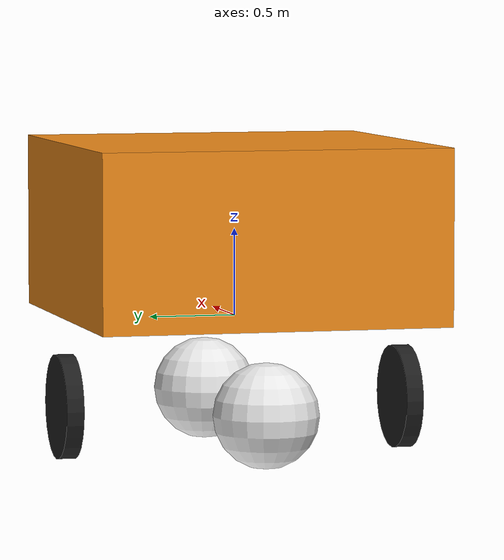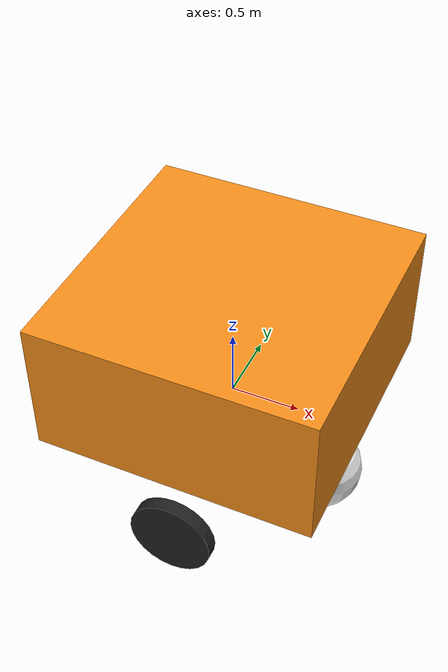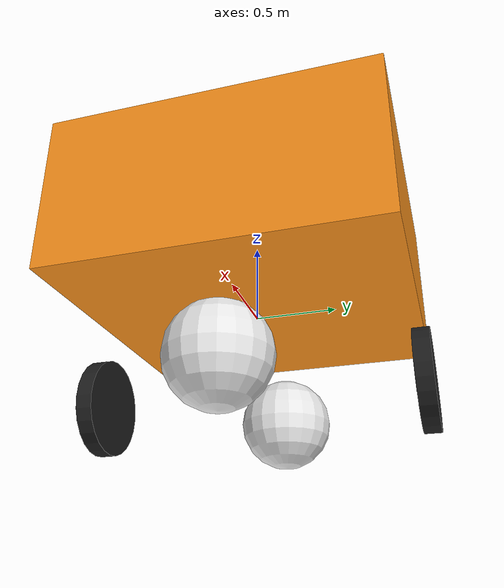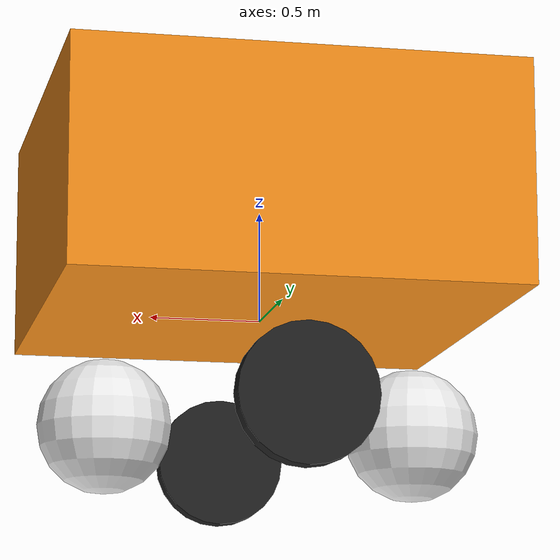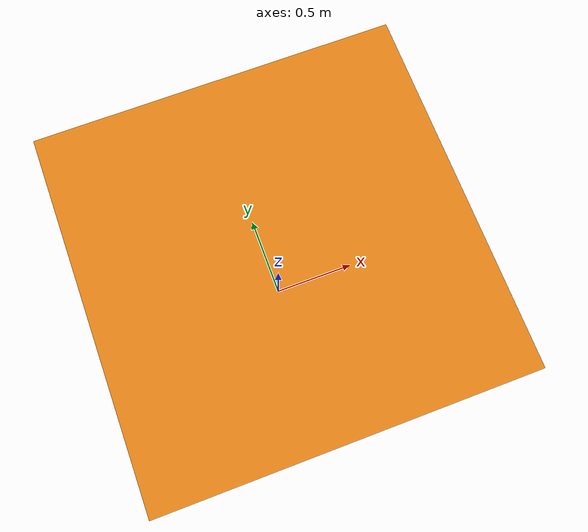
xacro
<?xml version="1.0"?>
<!-- Basic differential drive mobile base -->
<robot xmlns:xacro="http://www.ros.org/wiki/xacro" name="diffdrive_robot">
  <xacro:arg name="prefix" default="" />
  <xacro:arg name="use_gazebo" default="false" />

  <xacro:include filename="$(find ugv_ctrl)/description/urdf/diffbot_description.urdf.xacro" />

  <!-- Import Rviz colors -->
  <xacro:include filename="$(find ugv_ctrl)/description/urdf/diffbot.materials.xacro" />

  <!-- Import diffbot ros2_control description -->
  <xacro:include filename="$(find ugv_ctrl)/description/ros2_control/diffbot.ros2_control.xacro" />

  <xacro:diffbot prefix="$(arg prefix)" />

  <xacro:diffbot_ros2_control
    name="DiffBot" prefix="$(arg prefix)" use_gazebo="$(arg use_gazebo)" />

  <xacro:if value="$(arg use_gazebo)">
    <!-- Import Gazebo Classic definitions + plugin -->
    <xacro:include filename="$(find ugv_ctrl)/description/gazebo/diffbot.gazebo.xacro" />
    <xacro:diffbot_gazebo prefix="$(arg prefix)" />
  </xacro:if>

</robot>

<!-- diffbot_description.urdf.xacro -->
<robot xmlns:xacro="http://www.ros.org/wiki/xacro">

  <xacro:macro name="diffbot" params="prefix">

    <!-- Constants for robot dimensions -->
    <xacro:property name="PI" value="3.1415926535897931" />
    <xacro:property name="base_mass" value="0.3" /> <!-- arbitrary value for base mass -->
    <xacro:property name="base_width" value="2.0" />
    <xacro:property name="base_length" value="2.0" />
    <xacro:property name="base_height" value="1.0" />
    <xacro:property name="wheel_mass" value="0.3" /> <!-- arbitrary value for wheel mass -->
    <xacro:property name="wheel_len" value="0.1" />
    <xacro:property name="wheel_radius" value="0.3" />
    <xacro:property name="caster_wheel_mass" value="0.1" /> <!-- arbitrary value for caster wheel
    mass -->
    <xacro:property name="caster_wheel_radius" value="0.3" />
    <xacro:property name="z_offset" value="-${base_height/2}" /> <!-- Space btw top of beam and the
    each joint -->

    <!-- Base Link -->
    <link name="${prefix}base_link">
      <collision>
        <origin xyz="0 0 0" rpy="0 0 0" />
        <geometry>
          <box size="${base_width} ${base_length} ${base_height}" />
        </geometry>
      </collision>

      <visual>
        <origin xyz="0 0 ${base_height/2}" rpy="0 0 0" />
        <geometry>
          <box size="${base_width} ${base_length} ${base_height}" />
        </geometry>
        <material name="orange" />
      </visual>

      <inertial>
        <origin xyz="0 0 0" rpy="0 0 0" />
        <mass value="${base_mass}" />
        <inertia
          ixx="${base_mass / 12.0 * (base_length*base_length + base_height*base_height)}" ixy="0.0"
          ixz="0.0"
          iyy="${base_mass / 12.0 * (base_height*base_height + base_width*base_width)}" iyz="0.0"
          izz="${base_mass / 12.0 * (base_width*base_width + base_length*base_length)}" />
      </inertial>
    </link>

    <joint name="${prefix}left_wheel_joint" type="continuous">
      <parent link="${prefix}base_link" />
      <child link="${prefix}left_wheel" />
      <origin xyz="0 ${base_width/2} ${z_offset}" rpy="0 0 0" />
      <axis xyz="0 1 0" />
      <dynamics damping="0.2" />
      <limit effort="100" velocity="1.0" />
    </joint>

    <!-- left wheel Link -->
    <link name="${prefix}left_wheel">
      <collision>
        <origin xyz="0 0 0" rpy="${PI/2} 0 0" />
        <geometry>
          <cylinder length="${wheel_len}" radius="${wheel_radius}" />
        </geometry>
      </collision>

      <visual>
        <origin xyz="0 0 0" rpy="${PI/2} 0 0" />
        <geometry>
          <cylinder length="${wheel_len}" radius="${wheel_radius}" />
        </geometry>
        <material name="black" />
      </visual>

      <inertial>
        <origin xyz="0 0 0" rpy="${PI/2} 0 0" />
        <mass value="${wheel_mass}" />
        <inertia
          ixx="${wheel_mass / 12.0 * (3*wheel_radius*wheel_radius + wheel_len*wheel_len)}" ixy="0.0"
          ixz="0.0"
          iyy="${wheel_mass / 12.0 * (3*wheel_radius*wheel_radius + wheel_len*wheel_len)}" iyz="0.0"
          izz="${wheel_mass / 2.0 * wheel_radius*wheel_radius}" />
      </inertial>
    </link>

    <joint name="${prefix}right_wheel_joint" type="continuous">
      <parent link="${prefix}base_link" />
      <child link="${prefix}right_wheel" />
      <origin xyz="0 -${base_width/2} ${z_offset}" rpy="0 0 0" />
      <axis xyz="0 1 0" />
      <dynamics damping="0.2" />
      <limit effort="100" velocity="1.0" />
    </joint>

    <!-- right wheel Link -->
    <link name="${prefix}right_wheel">
      <collision>
        <origin xyz="0 0 0" rpy="${PI/2} 0 0" />
        <geometry>
          <cylinder length="${wheel_len}" radius="${wheel_radius}" />
        </geometry>
      </collision>

      <visual>
        <origin xyz="0 0 0" rpy="${PI/2} 0 0" />
        <geometry>
          <cylinder length="${wheel_len}" radius="${wheel_radius}" />
        </geometry>
        <material name="black" />
      </visual>

      <inertial>
        <origin xyz="0 0 0" rpy="${PI/2} 0 0" />
        <mass value="${wheel_mass}" />
        <inertia
          ixx="${wheel_mass / 12.0 * (3*wheel_radius*wheel_radius + wheel_len*wheel_len)}" ixy="0.0"
          ixz="0.0"
          iyy="${wheel_mass / 12.0 * (3*wheel_radius*wheel_radius + wheel_len*wheel_len)}" iyz="0.0"
          izz="${wheel_mass / 2.0 * wheel_radius*wheel_radius}" />
      </inertial>
    </link>

    <joint name="${prefix}caster_frontal_wheel_joint" type="fixed">
      <parent link="${prefix}base_link" />
      <child link="${prefix}caster_frontal_wheel" />
      <origin xyz="${base_width/2 - caster_wheel_radius} 0 ${z_offset}" rpy="0 0 0" />
    </joint>

    <!-- caster frontal wheel Link -->
    <link name="${prefix}caster_frontal_wheel">
      <collision>
        <origin xyz="0 0 0" rpy="0 0 0" />
        <geometry>
          <sphere radius="${caster_wheel_radius}" />
        </geometry>
      </collision>

      <visual>
        <origin xyz="0 0 0" rpy="0 0 0" />
        <geometry>
          <sphere radius="${caster_wheel_radius}" />
        </geometry>
        <material name="white" />
      </visual>

      <inertial>
        <origin xyz="0 0 0" rpy="0 0 0" />
        <mass value="${caster_wheel_mass}" />
        <inertia
          ixx="${caster_wheel_mass * 0.4 * (caster_wheel_radius * caster_wheel_radius)}" ixy="0.0"
          ixz="0.0"
          iyy="${caster_wheel_mass * 0.4 * (caster_wheel_radius * caster_wheel_radius)}" iyz="0.0"
          izz="${caster_wheel_mass * 0.4 * (caster_wheel_radius * caster_wheel_radius)}" />
      </inertial>
    </link>

    <joint name="${prefix}caster_rear_wheel_joint" type="fixed">
      <parent link="${prefix}base_link" />
      <child link="${prefix}caster_rear_wheel" />
      <origin xyz="${-base_width/2 + caster_wheel_radius} 0 ${z_offset}" rpy="0 0 0" />
    </joint>

    <!-- caster rear wheel Link -->
    <link name="${prefix}caster_rear_wheel">
      <collision>
        <origin xyz="0 0 0" rpy="0 0 0" />
        <geometry>
          <sphere radius="${caster_wheel_radius}" />
        </geometry>
      </collision>

      <visual>
        <origin xyz="0 0 0" rpy="0 0 0" />
        <geometry>
          <sphere radius="${caster_wheel_radius}" />
        </geometry>
        <material name="white" />
      </visual>

      <inertial>
        <origin xyz="0 0 0" rpy="0 0 0" />
        <mass value="${caster_wheel_mass}" />
        <inertia
          ixx="${caster_wheel_mass * 0.4 * (caster_wheel_radius * caster_wheel_radius)}" ixy="0.0"
          ixz="0.0"
          iyy="${caster_wheel_mass * 0.4 * (caster_wheel_radius * caster_wheel_radius)}" iyz="0.0"
          izz="${caster_wheel_mass * 0.4 * (caster_wheel_radius * caster_wheel_radius)}" />
      </inertial>
    </link>

  </xacro:macro>

</robot>
